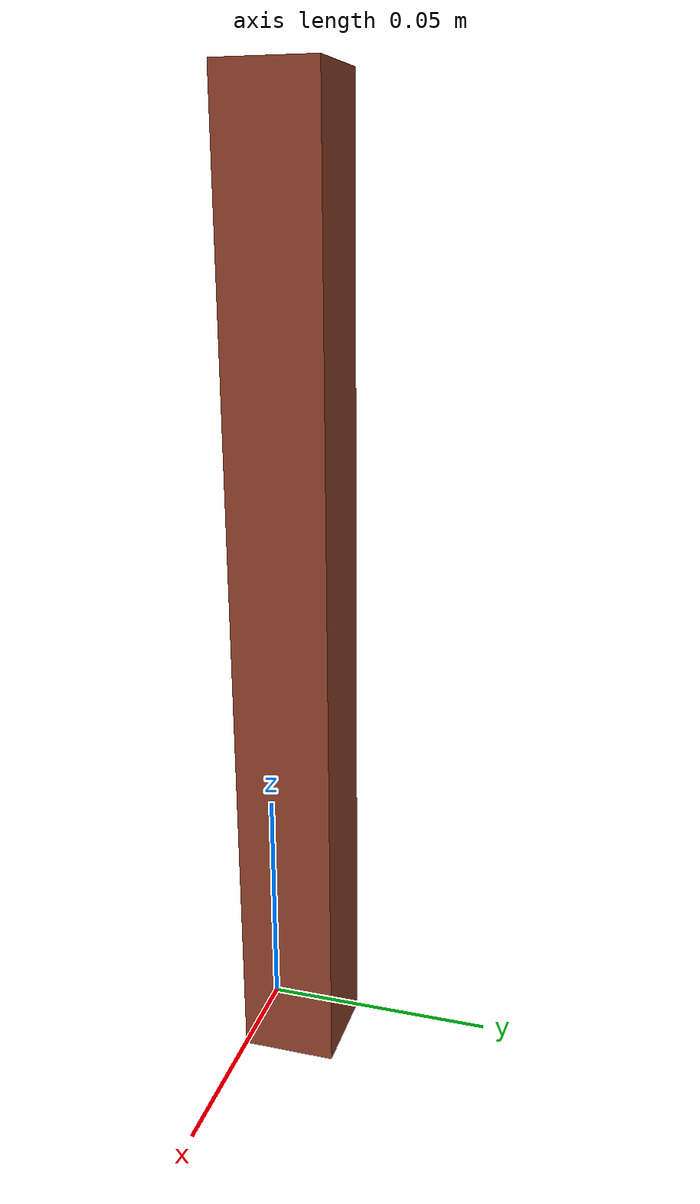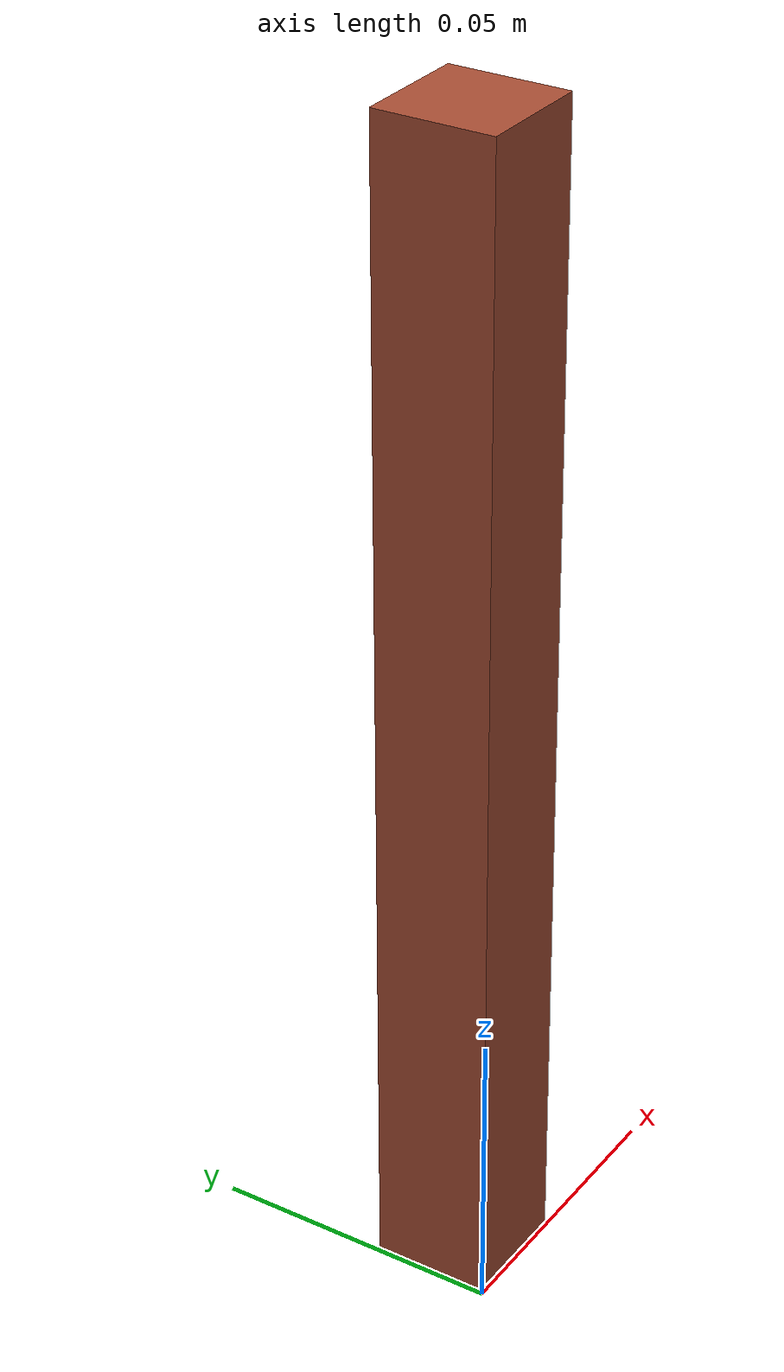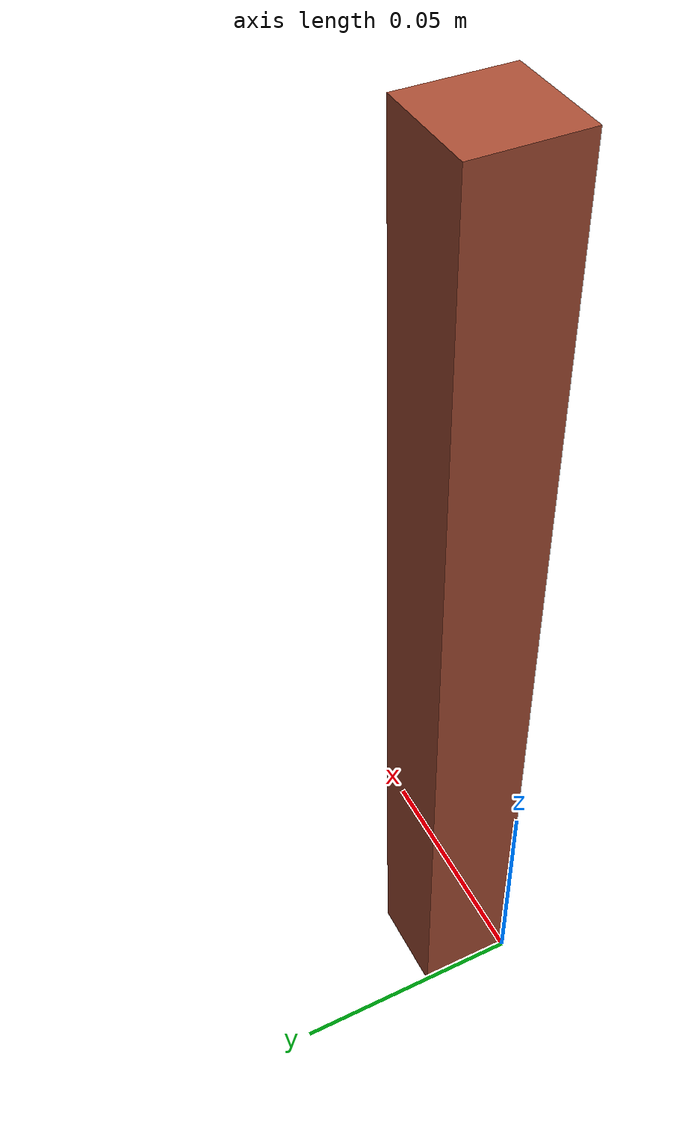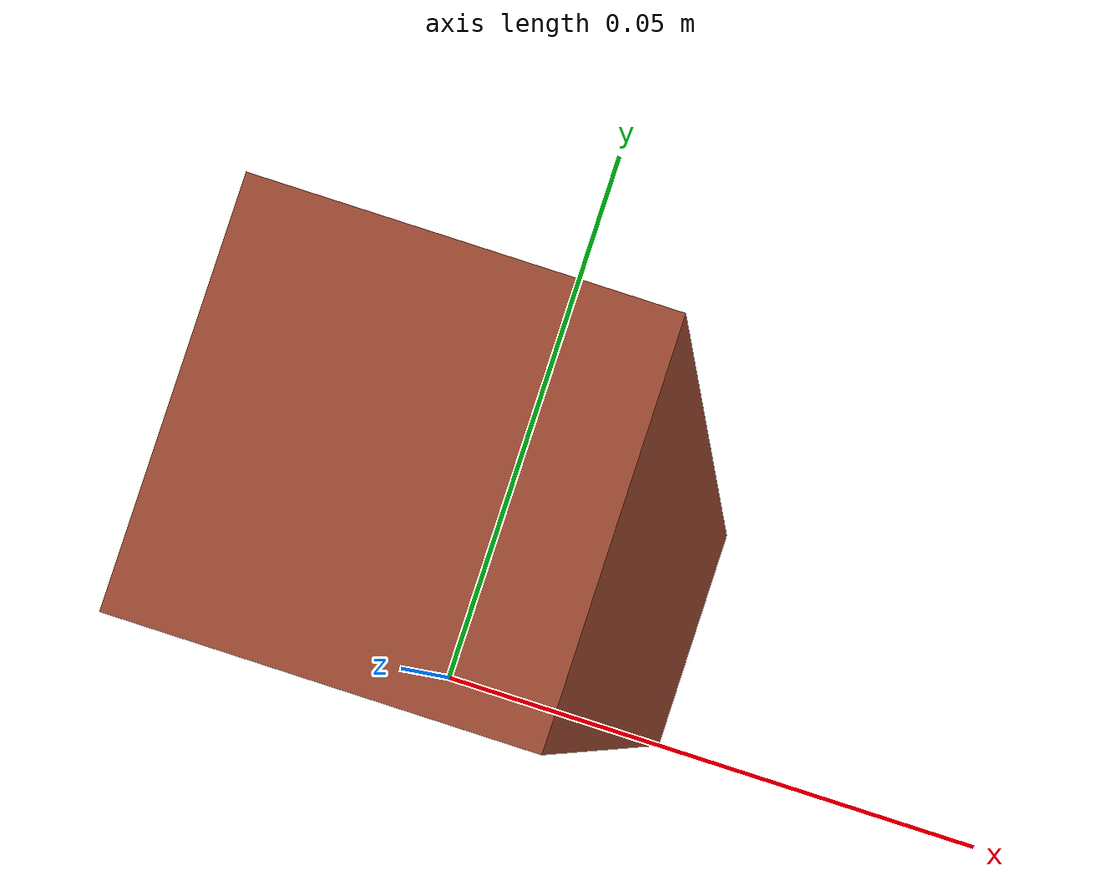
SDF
<?xml version="1.0" ?>
<sdf version="1.4">
  <model name="insertion_squarerod">
    <static>0</static>
    <link name="squarerod">
      <inertial>
	<!-- Location of center of mass (COM) -->
	<pose>COM_X COM_Y COM_Z 0 0 0</pose>
        <mass>MASS</mass>
	<!-- Inertia of cuboid: ih = m(d^2+w^2)/12 ; id = m(h^2+w^2)/12 ; iw = m(d^2+h^2)/12-->
        <inertia>
          <ixx>INERTIA_TENSOR_XX</ixx>
          <ixy>INERTIA_TENSOR_XY</ixy>
          <ixz>INERTIA_TENSOR_XZ</ixz>
          <iyy>INERTIA_TENSOR_YY</iyy>
          <iyz>INERTIA_TENSOR_YZ</iyz>
          <izz>INERTIA_TENSOR_ZZ</izz>
        </inertia>
      </inertial>
      <collision name="squarerod_collision">
        <pose>0 0 0 0 0 0</pose>
        <geometry>
	  <mesh>
	    <!-- The part was designed in mm but the model assumes meters. -->
	    <scale>0.001 0.001 0.001</scale>
	    <uri>file://../../../../home/pnadeau/Simulation/InsertionTaskFiles/SquareRod.dae</uri>
	  </mesh>
        </geometry>
        <surface>
          <bounce>
          	<restitution_coefficient>0</restitution_coefficient>
		<threshold>0.01</threshold>
	  </bounce>
          <friction>
            <ode>
              <mu>1</mu>
              <mu2>1</mu2>
            </ode>
          </friction>
          <contact>
            <ode>
              <kp>10000000.0</kp>
              <kd>0.1</kd>
              <min_depth>0.003</min_depth>
              <max_vel>0.0</max_vel>
              <soft_cfm>0.2</soft_cfm>
              <soft_erp>0.2</soft_erp>
            </ode>
          </contact>
        </surface>
      </collision>
      <visual name="squarerod_visual">
        <pose>0 0 0 0 0 0</pose>
        <geometry>
	  <mesh>
	    <!-- The part was designed in mm but the model assumes meters. -->
            <scale>0.001 0.001 0.001</scale>
            <uri>file://../../../../home/pnadeau/Simulation/InsertionTaskFiles/SquareRod.stl</uri>
          </mesh>
        </geometry>
        <material>
          <script>
            <uri>file://media/materials/scripts/gazebo.material</uri>
            <name>Gazebo/Bricks</name>
          </script>
        </material>
      </visual>
      <velocity_decay>
        <linear>0.000000</linear>
        <angular>0.000000</angular>
      </velocity_decay>
      <self_collide>0</self_collide>
      <kinematic>0</kinematic>
      <gravity>1</gravity>
    </link>
  </model>
</sdf>
